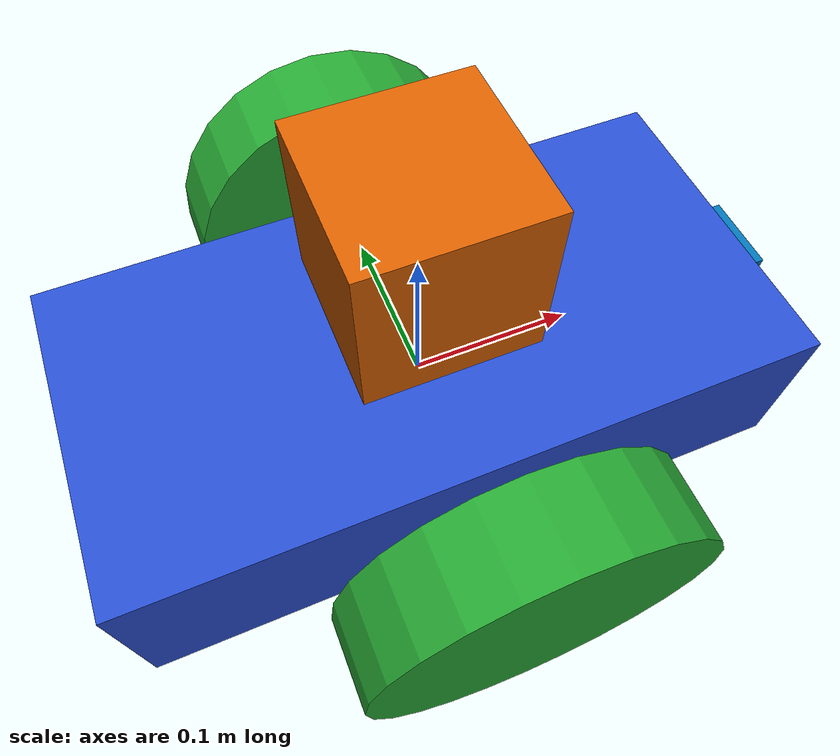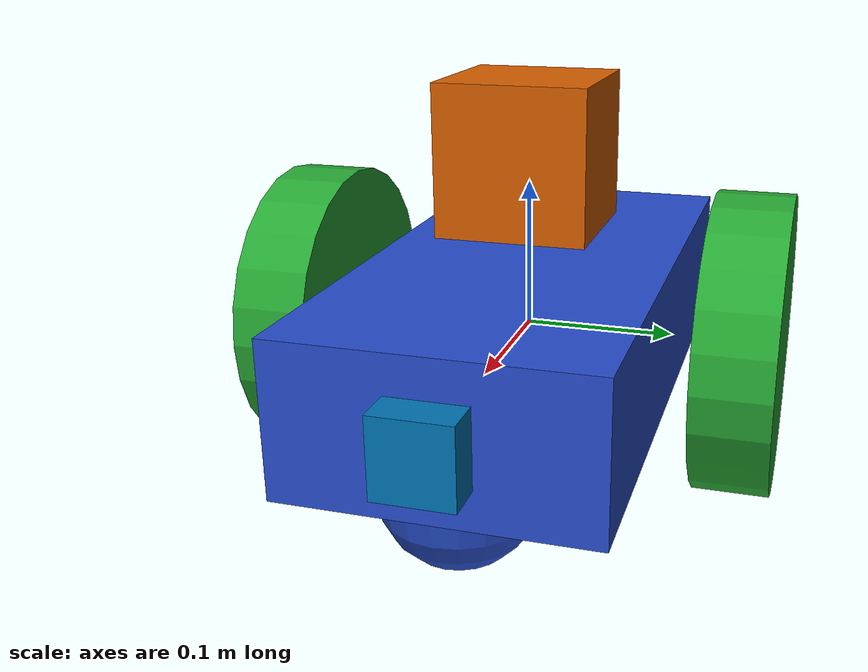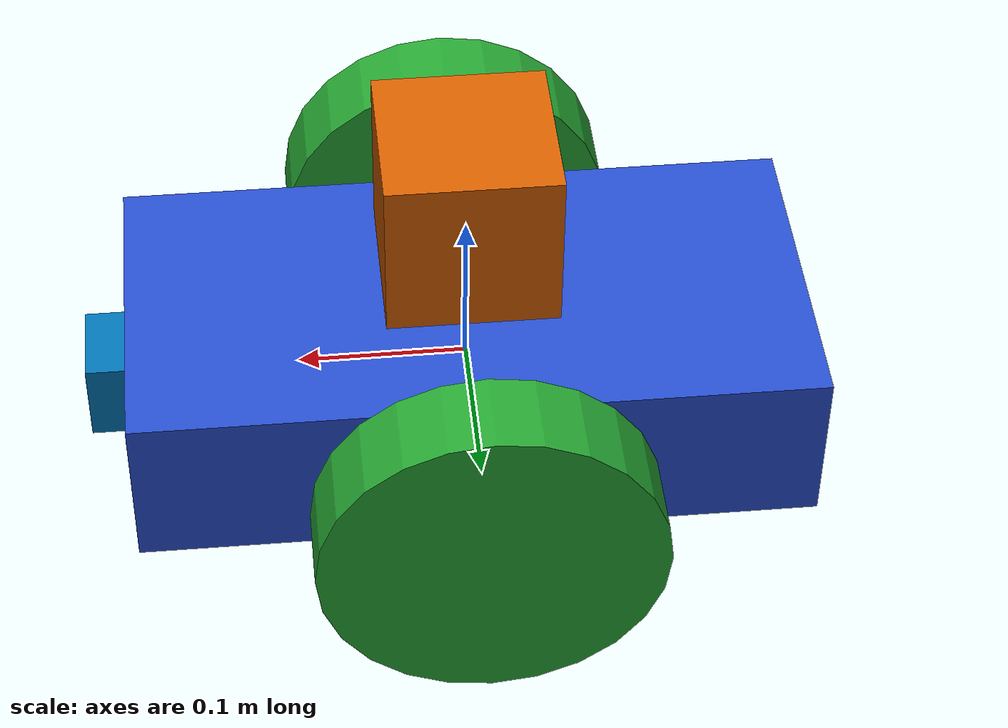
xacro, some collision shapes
<?xml version='1.0'?>

<robot name="mbot" xmlns:xacro="http://www.ros.org/wiki/xacro">
  <xacro:include filename="$(find map_my_world)/urdf/bot1.gazebo" />
  <link name="robot_footprint"></link>

  <joint name="robot_footprint_joint" type="fixed">
    <origin xyz="0 0 0" rpy="0 0 0" />
    <parent link="robot_footprint"/>
    <child link="chassis" />
  </joint>

  <link name='chassis'>
    <pose>0 0 0.1 0 0 0</pose>

    <inertial>
      <mass value="15.0"/>
      <origin xyz="0.0 0 0" rpy=" 0 0 0"/>
      <inertia
          ixx="0.1" ixy="0" ixz="0"
          iyy="0.1" iyz="0"
          izz="0.1"
      />
    </inertial>

    <collision name='collision'>
      <origin xyz="0 0 0" rpy=" 0 0 0"/>
      <geometry>
        <box size=".4 .2 .1"/>
      </geometry>
    </collision>

    <visual name='chassis_visual'>
      <origin xyz="0 0 0" rpy=" 0 0 0"/>
      <geometry>
        <box size=".4 .2 .1"/>
      </geometry>
    </visual>

    <collision name='back_caster_collision'>
      <origin xyz="-0.15 0 -0.05" rpy=" 0 0 0"/>
      <geometry>
        <sphere radius="0.0499"/>
      </geometry>
    </collision>

    <visual name='back_caster_visual'>
      <origin xyz="-0.15 0 -0.05" rpy=" 0 0 0"/>
      <geometry>
        <sphere radius="0.05"/>
      </geometry>
    </visual>

    <collision name='front_caster_collision'>
      <origin xyz="0.15 0 -0.05" rpy=" 0 0 0"/>
      <geometry>
        <sphere radius="0.0499"/>
      </geometry>
    </collision>

    <visual name='front_caster_visual'>
      <origin xyz="0.15 0 -0.05" rpy=" 0 0 0"/>
      <geometry>
        <sphere radius="0.05"/>
      </geometry>
    </visual>

  </link>

  <link name="left_wheel">
    <inertial>
      <mass value="5.0"/>
      <origin xyz="0.0 0 0" rpy=" 0 1.5707 1.5707"/>
      <inertia
          ixx="0.1" ixy="0" ixz="0"
          iyy="0.1" iyz="0"
          izz="0.1"
      />
    </inertial>

    <collision name='collision'>
      <origin xyz="0.0 0 0" rpy=" 0 1.5707 1.5707"/>
      <geometry>
        <cylinder radius="0.1" length="0.05"/>
      </geometry>
    </collision>

    <visual name='left_wheel_visual'>
      <origin xyz="0.0 0 0" rpy=" 0 1.5707 1.5707"/>
      <geometry>
        <cylinder radius="0.1" length="0.05"/>
      </geometry>
    </visual>
  </link>

  <joint type="continuous" name="left_wheel_hinge">
    <origin xyz="0 0.15 0" rpy="0 0 0"/>
    <child link="left_wheel"/>
    <parent link="chassis"/>
    <axis xyz="0 1 0" rpy="0 0 0"/>
    <limit effort="10000" velocity="1000"/>
    <dynamics damping="1.0" friction="1.0"/>
  </joint>

  <link name="right_wheel">
    <inertial>
      <mass value="5.0"/>
      <origin xyz="0.0 0 0" rpy=" 0 1.5707 1.5707"/>
      <inertia
          ixx="0.1" ixy="0" ixz="0"
          iyy="0.1" iyz="0"
          izz="0.1"
      />
    </inertial>

    <collision name='collision'>
      <origin xyz="0.0 0 0" rpy=" 0 1.5707 1.5707"/>
      <geometry>
        <cylinder radius="0.1" length="0.05"/>
      </geometry>
    </collision>

    <visual name='right_wheel_visual'>
      <origin xyz="0.0 0 0" rpy=" 0 1.5707 1.5707"/>
      <geometry>
        <cylinder radius="0.1" length="0.05"/>
      </geometry>
    </visual>
  </link>

  <joint type="continuous" name="right_wheel_hinge">
    <origin xyz="0 -0.15 0" rpy="0 0 0"/>
    <child link="right_wheel"/>
    <parent link="chassis"/>
    <axis xyz="0 1 0" rpy="0 0 0"/>
    <limit effort="10000" velocity="1000"/>
    <dynamics damping="1.0" friction="1.0"/>
  </joint>

  <link name="camera_link">
    <inertial>
      <mass value="0.1"/>
      <origin xyz="0.0 0 0" rpy=" 0 0 0"/>
      <inertia
          ixx="1e-6" ixy="0" ixz="0"
          iyy="1e-6" iyz="0"
          izz="1e-6"
      />
    </inertial>

    <collision name='collision'>
      <origin xyz="0.0 0 0" rpy=" 0 0 0"/>
      <geometry>
        <box size="0.05 0.05 0.05"/>
      </geometry>
    </collision>

    <visual name='camera_visual'>
      <origin xyz="0.0 0 0" rpy=" 0 0 0"/>
      <geometry>
        <box size="0.05 0.05 0.05"/>
      </geometry>
    </visual>
  </link>

  <link name="hokuyo">
    <inertial>
      <mass value="0.1"/>
      <origin xyz="0.0 0 0" rpy=" 0 0 0"/>
      <inertia
          ixx="1e-6" ixy="0" ixz="0"
          iyy="1e-6" iyz="0"
          izz="1e-6"
      />
    </inertial>

    <collision name='collision'>
      <origin xyz="0.0 0 0" rpy=" 0 0 0"/>
      <geometry>
        <box size="0.1 0.1 0.1"/>
      </geometry>
    </collision>

    <visual name='hokuyo_visual'>
      <origin xyz="0.0 0 0" rpy=" 0 0 0"/>
      <geometry>
        <mesh filename="package://map_my_world/meshes/hokuyo.dae"/>
      </geometry>
    </visual>
  </link>

  <joint type="fixed" name="hokuyo_joint">
    <origin xyz="0.0 0 0.12" rpy="0 0 0"/>
    <child link="hokuyo"/>
    <parent link="chassis"/>
  </joint>

  <joint type="fixed" name="camera_joint">
    <origin xyz="0.2 0 0" rpy="0 0 0"/>
    <child link="camera_link"/>
    <parent link="chassis"/>
    <axis xyz="0 1 0" rpy="0 0 0"/>
    <limit effort="10000" velocity="1000"/>
    <dynamics damping="1.0" friction="1.0"/>
  </joint>

    <joint name="camera_joint2" type="fixed">
    <origin xyz="0 0 0" rpy="-1.5 0 -1.5" />
    <parent link="camera_link"/>
    <child link="camera_rgbd_frame" />
  </joint>

  <link name="camera_rgbd_frame"></link>
</robot>
